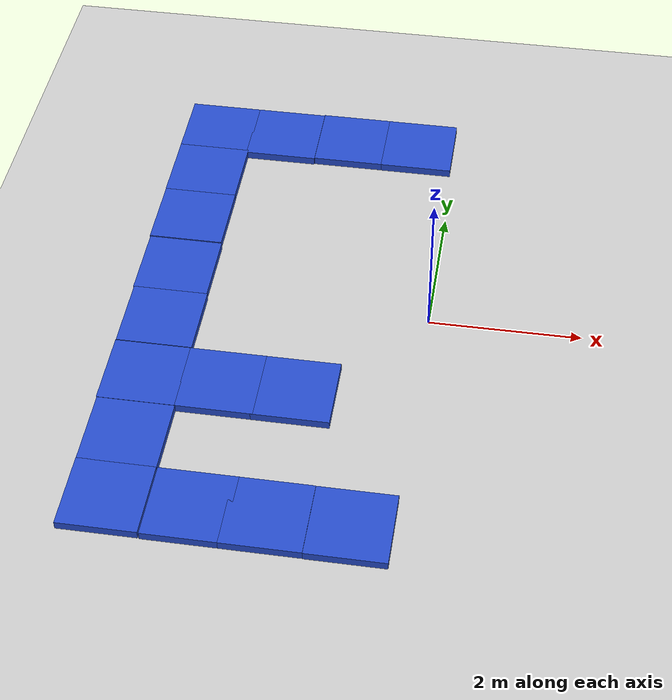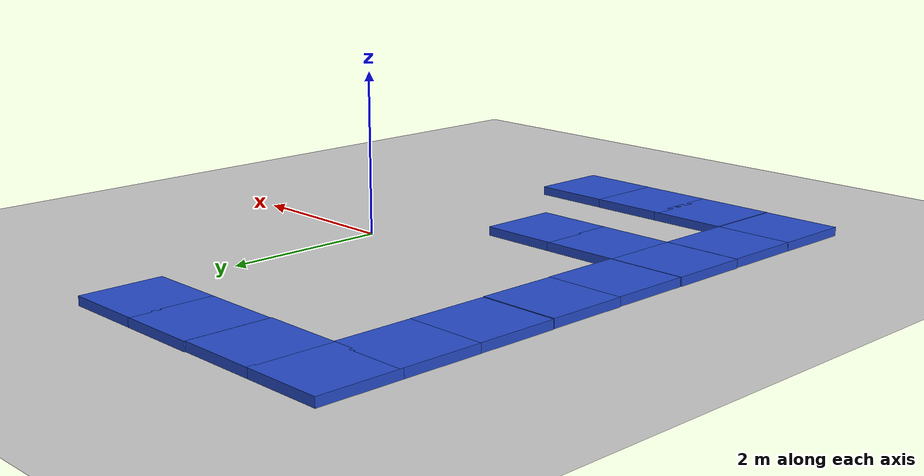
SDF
<sdf version="1.6">
 <world name="default">
  <model name="ground_plane">
   <static>1</static>
   <link name="link">
    <collision name="collision">
     <geometry><plane><normal>0 0 1</normal><size>100 100</size></plane></geometry>
     <surface><friction><ode><mu>100</mu><mu2>50</mu2></ode></friction></surface>
    </collision>
    <visual name="visual">
     <cast_shadows>0</cast_shadows>
     <geometry><plane><normal>0 0 1</normal><size>100 100</size></plane></geometry>
     <material>
      <script><uri>file://media/materials/scripts/gazebo.material</uri><name>Gazebo/Grey</name></script>
     </material>
    </visual>
   </link>
  </model>
  <model name="bloque_clone_5">
   <link name="unit_box::link">
    <inertial>
     <mass>0.765734</mass>
     <inertia>
      <ixx>0.0668092</ixx>
      <ixy>0</ixy>
      <ixz>0</ixz>
      <iyy>0.0668092</iyy>
      <iyz>0</iyz>
      <izz>0.127622</izz>
     </inertia>
    </inertial>
    <visual name="visual">
     <geometry><box><size>1 1 0.2</size></box></geometry>
     <material>
      <script><name>Gazebo/Blue</name><uri>file://media/materials/scripts/gazebo.material</uri></script>
      <shader type="pixel"><normal_map>__default__</normal_map></shader>
      <ambient>0.1 0.1 0.3 1</ambient>
      <diffuse>0.1 0.1 0.7 1</diffuse>
      <specular>0.01 0.01 0.01 1</specular>
      <emissive>0 0 0 1</emissive>
      <lighting>1</lighting>
     </material>
    </visual>
    <collision name="collision">
     <geometry><box><size>1 1 0.2</size></box></geometry>
     <surface>
      <friction>
       <ode><mu>1</mu><mu2>1</mu2><fdir1>0 0 0</fdir1><slip1>0</slip1><slip2>0</slip2></ode>
       <torsional>
        <coefficient>1</coefficient>
        <patch_radius>0</patch_radius>
        <surface_radius>0</surface_radius>
        <use_patch_radius>1</use_patch_radius>
        <ode><slip>0</slip></ode>
       </torsional>
      </friction>
      <bounce><restitution_coefficient>0</restitution_coefficient><threshold>1e+06</threshold></bounce>
      <contact>
       <collide_without_contact>0</collide_without_contact>
       <collide_without_contact_bitmask>1</collide_without_contact_bitmask>
       <collide_bitmask>1</collide_bitmask>
       <ode>
        <soft_cfm>0</soft_cfm>
        <soft_erp>0.2</soft_erp>
        <kp>1e+13</kp>
        <kd>1</kd>
        <max_vel>0.01</max_vel>
        <min_depth>0</min_depth>
       </ode>
       <bullet>
        <split_impulse>1</split_impulse>
        <split_impulse_penetration_threshold>-0.01</split_impulse_penetration_threshold>
        <soft_cfm>0</soft_cfm>
        <soft_erp>0.2</soft_erp>
        <kp>1e+13</kp>
        <kd>1</kd>
       </bullet>
      </contact>
     </surface>
    </collision>
   </link>
   <static>1</static>
   <pose>-0.517215 -3.51963 0 0 -0 0</pose>
  </model>
  <model name="bloque_clone_6">
   <link name="unit_box::link">
    <inertial>
     <mass>0.765734</mass>
     <inertia>
      <ixx>0.0668092</ixx>
      <ixy>0</ixy>
      <ixz>0</ixz>
      <iyy>0.0668092</iyy>
      <iyz>0</iyz>
      <izz>0.127622</izz>
     </inertia>
    </inertial>
    <visual name="visual">
     <geometry><box><size>1 1 0.2</size></box></geometry>
     <material>
      <script><name>Gazebo/Blue</name><uri>file://media/materials/scripts/gazebo.material</uri></script>
      <shader type="pixel"><normal_map>__default__</normal_map></shader>
      <ambient>0.1 0.1 0.3 1</ambient>
      <diffuse>0.1 0.1 0.7 1</diffuse>
      <specular>0.01 0.01 0.01 1</specular>
      <emissive>0 0 0 1</emissive>
      <lighting>1</lighting>
     </material>
    </visual>
    <collision name="collision">
     <geometry><box><size>1 1 0.2</size></box></geometry>
     <surface>
      <friction>
       <ode><mu>1</mu><mu2>1</mu2><fdir1>0 0 0</fdir1><slip1>0</slip1><slip2>0</slip2></ode>
       <torsional>
        <coefficient>1</coefficient>
        <patch_radius>0</patch_radius>
        <surface_radius>0</surface_radius>
        <use_patch_radius>1</use_patch_radius>
        <ode><slip>0</slip></ode>
       </torsional>
      </friction>
      <bounce><restitution_coefficient>0</restitution_coefficient><threshold>1e+06</threshold></bounce>
      <contact>
       <collide_without_contact>0</collide_without_contact>
       <collide_without_contact_bitmask>1</collide_without_contact_bitmask>
       <collide_bitmask>1</collide_bitmask>
       <ode>
        <soft_cfm>0</soft_cfm>
        <soft_erp>0.2</soft_erp>
        <kp>1e+13</kp>
        <kd>1</kd>
        <max_vel>0.01</max_vel>
        <min_depth>0</min_depth>
       </ode>
       <bullet>
        <split_impulse>1</split_impulse>
        <split_impulse_penetration_threshold>-0.01</split_impulse_penetration_threshold>
        <soft_cfm>0</soft_cfm>
        <soft_erp>0.2</soft_erp>
        <kp>1e+13</kp>
        <kd>1</kd>
       </bullet>
      </contact>
     </surface>
    </collision>
   </link>
   <static>1</static>
   <pose>-3.4718 -0.50062 0 0 -0 0</pose>
  </model>
  <model name="bloque_clone_7">
   <link name="unit_box::link">
    <inertial>
     <mass>0.765734</mass>
     <inertia>
      <ixx>0.0668092</ixx>
      <ixy>0</ixy>
      <ixz>0</ixz>
      <iyy>0.0668092</iyy>
      <iyz>0</iyz>
      <izz>0.127622</izz>
     </inertia>
    </inertial>
    <visual name="visual">
     <geometry><box><size>1 1 0.2</size></box></geometry>
     <material>
      <script><name>Gazebo/Blue</name><uri>file://media/materials/scripts/gazebo.material</uri></script>
      <shader type="pixel"><normal_map>__default__</normal_map></shader>
      <ambient>0.1 0.1 0.3 1</ambient>
      <diffuse>0.1 0.1 0.7 1</diffuse>
      <specular>0.01 0.01 0.01 1</specular>
      <emissive>0 0 0 1</emissive>
      <lighting>1</lighting>
     </material>
    </visual>
    <collision name="collision">
     <geometry><box><size>1 1 0.2</size></box></geometry>
     <surface>
      <friction>
       <ode><mu>1</mu><mu2>1</mu2><fdir1>0 0 0</fdir1><slip1>0</slip1><slip2>0</slip2></ode>
       <torsional>
        <coefficient>1</coefficient>
        <patch_radius>0</patch_radius>
        <surface_radius>0</surface_radius>
        <use_patch_radius>1</use_patch_radius>
        <ode><slip>0</slip></ode>
       </torsional>
      </friction>
      <bounce><restitution_coefficient>0</restitution_coefficient><threshold>1e+06</threshold></bounce>
      <contact>
       <collide_without_contact>0</collide_without_contact>
       <collide_without_contact_bitmask>1</collide_without_contact_bitmask>
       <collide_bitmask>1</collide_bitmask>
       <ode>
        <soft_cfm>0</soft_cfm>
        <soft_erp>0.2</soft_erp>
        <kp>1e+13</kp>
        <kd>1</kd>
        <max_vel>0.01</max_vel>
        <min_depth>0</min_depth>
       </ode>
       <bullet>
        <split_impulse>1</split_impulse>
        <split_impulse_penetration_threshold>-0.01</split_impulse_penetration_threshold>
        <soft_cfm>0</soft_cfm>
        <soft_erp>0.2</soft_erp>
        <kp>1e+13</kp>
        <kd>1</kd>
       </bullet>
      </contact>
     </surface>
    </collision>
   </link>
   <static>1</static>
   <pose>-3.46848 -3.5081 0 0 -0 0</pose>
  </model>
  <model name="bloque_clone_8">
   <link name="unit_box::link">
    <inertial>
     <mass>0.765734</mass>
     <inertia>
      <ixx>0.0668092</ixx>
      <ixy>0</ixy>
      <ixz>0</ixz>
      <iyy>0.0668092</iyy>
      <iyz>0</iyz>
      <izz>0.127622</izz>
     </inertia>
    </inertial>
    <visual name="visual">
     <geometry><box><size>1 1 0.2</size></box></geometry>
     <material>
      <script><name>Gazebo/Blue</name><uri>file://media/materials/scripts/gazebo.material</uri></script>
      <shader type="pixel"><normal_map>__default__</normal_map></shader>
      <ambient>0.1 0.1 0.3 1</ambient>
      <diffuse>0.1 0.1 0.7 1</diffuse>
      <specular>0.01 0.01 0.01 1</specular>
      <emissive>0 0 0 1</emissive>
      <lighting>1</lighting>
     </material>
    </visual>
    <collision name="collision">
     <geometry><box><size>1 1 0.2</size></box></geometry>
     <surface>
      <friction>
       <ode><mu>1</mu><mu2>1</mu2><fdir1>0 0 0</fdir1><slip1>0</slip1><slip2>0</slip2></ode>
       <torsional>
        <coefficient>1</coefficient>
        <patch_radius>0</patch_radius>
        <surface_radius>0</surface_radius>
        <use_patch_radius>1</use_patch_radius>
        <ode><slip>0</slip></ode>
       </torsional>
      </friction>
      <bounce><restitution_coefficient>0</restitution_coefficient><threshold>1e+06</threshold></bounce>
      <contact>
       <collide_without_contact>0</collide_without_contact>
       <collide_without_contact_bitmask>1</collide_without_contact_bitmask>
       <collide_bitmask>1</collide_bitmask>
       <ode>
        <soft_cfm>0</soft_cfm>
        <soft_erp>0.2</soft_erp>
        <kp>1e+13</kp>
        <kd>1</kd>
        <max_vel>0.01</max_vel>
        <min_depth>0</min_depth>
       </ode>
       <bullet>
        <split_impulse>1</split_impulse>
        <split_impulse_penetration_threshold>-0.01</split_impulse_penetration_threshold>
        <soft_cfm>0</soft_cfm>
        <soft_erp>0.2</soft_erp>
        <kp>1e+13</kp>
        <kd>1</kd>
       </bullet>
      </contact>
     </surface>
    </collision>
   </link>
   <static>1</static>
   <pose>-1.51898 -3.51565 0 0 -0 0</pose>
  </model>
  <model name="bloque_clone_9">
   <link name="unit_box::link">
    <inertial>
     <mass>0.765734</mass>
     <inertia>
      <ixx>0.0668092</ixx>
      <ixy>0</ixy>
      <ixz>0</ixz>
      <iyy>0.0668092</iyy>
      <iyz>0</iyz>
      <izz>0.127622</izz>
     </inertia>
    </inertial>
    <visual name="visual">
     <geometry><box><size>1 1 0.2</size></box></geometry>
     <material>
      <script><name>Gazebo/Blue</name><uri>file://media/materials/scripts/gazebo.material</uri></script>
      <shader type="pixel"><normal_map>__default__</normal_map></shader>
      <ambient>0.1 0.1 0.3 1</ambient>
      <diffuse>0.1 0.1 0.7 1</diffuse>
      <specular>0.01 0.01 0.01 1</specular>
      <emissive>0 0 0 1</emissive>
      <lighting>1</lighting>
     </material>
    </visual>
    <collision name="collision">
     <geometry><box><size>1 1 0.2</size></box></geometry>
     <surface>
      <friction>
       <ode><mu>1</mu><mu2>1</mu2><fdir1>0 0 0</fdir1><slip1>0</slip1><slip2>0</slip2></ode>
       <torsional>
        <coefficient>1</coefficient>
        <patch_radius>0</patch_radius>
        <surface_radius>0</surface_radius>
        <use_patch_radius>1</use_patch_radius>
        <ode><slip>0</slip></ode>
       </torsional>
      </friction>
      <bounce><restitution_coefficient>0</restitution_coefficient><threshold>1e+06</threshold></bounce>
      <contact>
       <collide_without_contact>0</collide_without_contact>
       <collide_without_contact_bitmask>1</collide_without_contact_bitmask>
       <collide_bitmask>1</collide_bitmask>
       <ode>
        <soft_cfm>0</soft_cfm>
        <soft_erp>0.2</soft_erp>
        <kp>1e+13</kp>
        <kd>1</kd>
        <max_vel>0.01</max_vel>
        <min_depth>0</min_depth>
       </ode>
       <bullet>
        <split_impulse>1</split_impulse>
        <split_impulse_penetration_threshold>-0.01</split_impulse_penetration_threshold>
        <soft_cfm>0</soft_cfm>
        <soft_erp>0.2</soft_erp>
        <kp>1e+13</kp>
        <kd>1</kd>
       </bullet>
      </contact>
     </surface>
    </collision>
   </link>
   <static>1</static>
   <pose>-2.45176 -3.51518 0 0 -0 0</pose>
  </model>
  <model name="bloque_clone_10">
   <link name="unit_box::link">
    <inertial>
     <mass>0.765734</mass>
     <inertia>
      <ixx>0.0668092</ixx>
      <ixy>0</ixy>
      <ixz>0</ixz>
      <iyy>0.0668092</iyy>
      <iyz>0</iyz>
      <izz>0.127622</izz>
     </inertia>
    </inertial>
    <visual name="visual">
     <geometry><box><size>1 1 0.2</size></box></geometry>
     <material>
      <script><name>Gazebo/Blue</name><uri>file://media/materials/scripts/gazebo.material</uri></script>
      <shader type="pixel"><normal_map>__default__</normal_map></shader>
      <ambient>0.1 0.1 0.3 1</ambient>
      <diffuse>0.1 0.1 0.7 1</diffuse>
      <specular>0.01 0.01 0.01 1</specular>
      <emissive>0 0 0 1</emissive>
      <lighting>1</lighting>
     </material>
    </visual>
    <collision name="collision">
     <geometry><box><size>1 1 0.2</size></box></geometry>
     <surface>
      <friction>
       <ode><mu>1</mu><mu2>1</mu2><fdir1>0 0 0</fdir1><slip1>0</slip1><slip2>0</slip2></ode>
       <torsional>
        <coefficient>1</coefficient>
        <patch_radius>0</patch_radius>
        <surface_radius>0</surface_radius>
        <use_patch_radius>1</use_patch_radius>
        <ode><slip>0</slip></ode>
       </torsional>
      </friction>
      <bounce><restitution_coefficient>0</restitution_coefficient><threshold>1e+06</threshold></bounce>
      <contact>
       <collide_without_contact>0</collide_without_contact>
       <collide_without_contact_bitmask>1</collide_without_contact_bitmask>
       <collide_bitmask>1</collide_bitmask>
       <ode>
        <soft_cfm>0</soft_cfm>
        <soft_erp>0.2</soft_erp>
        <kp>1e+13</kp>
        <kd>1</kd>
        <max_vel>0.01</max_vel>
        <min_depth>0</min_depth>
       </ode>
       <bullet>
        <split_impulse>1</split_impulse>
        <split_impulse_penetration_threshold>-0.01</split_impulse_penetration_threshold>
        <soft_cfm>0</soft_cfm>
        <soft_erp>0.2</soft_erp>
        <kp>1e+13</kp>
        <kd>1</kd>
       </bullet>
      </contact>
     </surface>
    </collision>
   </link>
   <static>1</static>
   <pose>-3.46553 -2.51171 0 0 -0 0</pose>
  </model>
  <model name="bloque_clone_11">
   <link name="unit_box::link">
    <inertial>
     <mass>0.765734</mass>
     <inertia>
      <ixx>0.0668092</ixx>
      <ixy>0</ixy>
      <ixz>0</ixz>
      <iyy>0.0668092</iyy>
      <iyz>0</iyz>
      <izz>0.127622</izz>
     </inertia>
    </inertial>
    <visual name="visual">
     <geometry><box><size>1 1 0.2</size></box></geometry>
     <material>
      <script><name>Gazebo/Blue</name><uri>file://media/materials/scripts/gazebo.material</uri></script>
      <shader type="pixel"><normal_map>__default__</normal_map></shader>
      <ambient>0.1 0.1 0.3 1</ambient>
      <diffuse>0.1 0.1 0.7 1</diffuse>
      <specular>0.01 0.01 0.01 1</specular>
      <emissive>0 0 0 1</emissive>
      <lighting>1</lighting>
     </material>
    </visual>
    <collision name="collision">
     <geometry><box><size>1 1 0.2</size></box></geometry>
     <surface>
      <friction>
       <ode><mu>1</mu><mu2>1</mu2><fdir1>0 0 0</fdir1><slip1>0</slip1><slip2>0</slip2></ode>
       <torsional>
        <coefficient>1</coefficient>
        <patch_radius>0</patch_radius>
        <surface_radius>0</surface_radius>
        <use_patch_radius>1</use_patch_radius>
        <ode><slip>0</slip></ode>
       </torsional>
      </friction>
      <bounce><restitution_coefficient>0</restitution_coefficient><threshold>1e+06</threshold></bounce>
      <contact>
       <collide_without_contact>0</collide_without_contact>
       <collide_without_contact_bitmask>1</collide_without_contact_bitmask>
       <collide_bitmask>1</collide_bitmask>
       <ode>
        <soft_cfm>0</soft_cfm>
        <soft_erp>0.2</soft_erp>
        <kp>1e+13</kp>
        <kd>1</kd>
        <max_vel>0.01</max_vel>
        <min_depth>0</min_depth>
       </ode>
       <bullet>
        <split_impulse>1</split_impulse>
        <split_impulse_penetration_threshold>-0.01</split_impulse_penetration_threshold>
        <soft_cfm>0</soft_cfm>
        <soft_erp>0.2</soft_erp>
        <kp>1e+13</kp>
        <kd>1</kd>
       </bullet>
      </contact>
     </surface>
    </collision>
   </link>
   <static>1</static>
   <pose>-3.47539 -1.50897 0 0 -0 0</pose>
  </model>
  <model name="bloque_clone_12">
   <link name="unit_box::link">
    <inertial>
     <mass>0.765734</mass>
     <inertia>
      <ixx>0.0668092</ixx>
      <ixy>0</ixy>
      <ixz>0</ixz>
      <iyy>0.0668092</iyy>
      <iyz>0</iyz>
      <izz>0.127622</izz>
     </inertia>
    </inertial>
    <visual name="visual">
     <geometry><box><size>1 1 0.2</size></box></geometry>
     <material>
      <script><name>Gazebo/Blue</name><uri>file://media/materials/scripts/gazebo.material</uri></script>
      <shader type="pixel"><normal_map>__default__</normal_map></shader>
      <ambient>0.1 0.1 0.3 1</ambient>
      <diffuse>0.1 0.1 0.7 1</diffuse>
      <specular>0.01 0.01 0.01 1</specular>
      <emissive>0 0 0 1</emissive>
      <lighting>1</lighting>
     </material>
    </visual>
    <collision name="collision">
     <geometry><box><size>1 1 0.2</size></box></geometry>
     <surface>
      <friction>
       <ode><mu>1</mu><mu2>1</mu2><fdir1>0 0 0</fdir1><slip1>0</slip1><slip2>0</slip2></ode>
       <torsional>
        <coefficient>1</coefficient>
        <patch_radius>0</patch_radius>
        <surface_radius>0</surface_radius>
        <use_patch_radius>1</use_patch_radius>
        <ode><slip>0</slip></ode>
       </torsional>
      </friction>
      <bounce><restitution_coefficient>0</restitution_coefficient><threshold>1e+06</threshold></bounce>
      <contact>
       <collide_without_contact>0</collide_without_contact>
       <collide_without_contact_bitmask>1</collide_without_contact_bitmask>
       <collide_bitmask>1</collide_bitmask>
       <ode>
        <soft_cfm>0</soft_cfm>
        <soft_erp>0.2</soft_erp>
        <kp>1e+13</kp>
        <kd>1</kd>
        <max_vel>0.01</max_vel>
        <min_depth>0</min_depth>
       </ode>
       <bullet>
        <split_impulse>1</split_impulse>
        <split_impulse_penetration_threshold>-0.01</split_impulse_penetration_threshold>
        <soft_cfm>0</soft_cfm>
        <soft_erp>0.2</soft_erp>
        <kp>1e+13</kp>
        <kd>1</kd>
       </bullet>
      </contact>
     </surface>
    </collision>
   </link>
   <static>1</static>
   <pose>-3.48145 0.49514 0 0 -0 0</pose>
  </model>
  <model name="bloque_clone_13">
   <link name="unit_box::link">
    <inertial>
     <mass>0.765734</mass>
     <inertia>
      <ixx>0.0668092</ixx>
      <ixy>0</ixy>
      <ixz>0</ixz>
      <iyy>0.0668092</iyy>
      <iyz>0</iyz>
      <izz>0.127622</izz>
     </inertia>
    </inertial>
    <visual name="visual">
     <geometry><box><size>1 1 0.2</size></box></geometry>
     <material>
      <script><name>Gazebo/Blue</name><uri>file://media/materials/scripts/gazebo.material</uri></script>
      <shader type="pixel"><normal_map>__default__</normal_map></shader>
      <ambient>0.1 0.1 0.3 1</ambient>
      <diffuse>0.1 0.1 0.7 1</diffuse>
      <specular>0.01 0.01 0.01 1</specular>
      <emissive>0 0 0 1</emissive>
      <lighting>1</lighting>
     </material>
    </visual>
    <collision name="collision">
     <geometry><box><size>1 1 0.2</size></box></geometry>
     <surface>
      <friction>
       <ode><mu>1</mu><mu2>1</mu2><fdir1>0 0 0</fdir1><slip1>0</slip1><slip2>0</slip2></ode>
       <torsional>
        <coefficient>1</coefficient>
        <patch_radius>0</patch_radius>
        <surface_radius>0</surface_radius>
        <use_patch_radius>1</use_patch_radius>
        <ode><slip>0</slip></ode>
       </torsional>
      </friction>
      <bounce><restitution_coefficient>0</restitution_coefficient><threshold>1e+06</threshold></bounce>
      <contact>
       <collide_without_contact>0</collide_without_contact>
       <collide_without_contact_bitmask>1</collide_without_contact_bitmask>
       <collide_bitmask>1</collide_bitmask>
       <ode>
        <soft_cfm>0</soft_cfm>
        <soft_erp>0.2</soft_erp>
        <kp>1e+13</kp>
        <kd>1</kd>
        <max_vel>0.01</max_vel>
        <min_depth>0</min_depth>
       </ode>
       <bullet>
        <split_impulse>1</split_impulse>
        <split_impulse_penetration_threshold>-0.01</split_impulse_penetration_threshold>
        <soft_cfm>0</soft_cfm>
        <soft_erp>0.2</soft_erp>
        <kp>1e+13</kp>
        <kd>1</kd>
       </bullet>
      </contact>
     </surface>
    </collision>
   </link>
   <static>1</static>
   <pose>-3.49288 1.51143 0 0 -0 0</pose>
  </model>
  <model name="bloque_clone_15">
   <link name="unit_box::link">
    <inertial>
     <mass>0.765734</mass>
     <inertia>
      <ixx>0.0668092</ixx>
      <ixy>0</ixy>
      <ixz>0</ixz>
      <iyy>0.0668092</iyy>
      <iyz>0</iyz>
      <izz>0.127622</izz>
     </inertia>
    </inertial>
    <visual name="visual">
     <geometry><box><size>1 1 0.2</size></box></geometry>
     <material>
      <script><name>Gazebo/Blue</name><uri>file://media/materials/scripts/gazebo.material</uri></script>
      <shader type="pixel"><normal_map>__default__</normal_map></shader>
      <ambient>0.1 0.1 0.3 1</ambient>
      <diffuse>0.1 0.1 0.7 1</diffuse>
      <specular>0.01 0.01 0.01 1</specular>
      <emissive>0 0 0 1</emissive>
      <lighting>1</lighting>
     </material>
    </visual>
    <collision name="collision">
     <geometry><box><size>1 1 0.2</size></box></geometry>
     <surface>
      <friction>
       <ode><mu>1</mu><mu2>1</mu2><fdir1>0 0 0</fdir1><slip1>0</slip1><slip2>0</slip2></ode>
       <torsional>
        <coefficient>1</coefficient>
        <patch_radius>0</patch_radius>
        <surface_radius>0</surface_radius>
        <use_patch_radius>1</use_patch_radius>
        <ode><slip>0</slip></ode>
       </torsional>
      </friction>
      <bounce><restitution_coefficient>0</restitution_coefficient><threshold>1e+06</threshold></bounce>
      <contact>
       <collide_without_contact>0</collide_without_contact>
       <collide_without_contact_bitmask>1</collide_without_contact_bitmask>
       <collide_bitmask>1</collide_bitmask>
       <ode>
        <soft_cfm>0</soft_cfm>
        <soft_erp>0.2</soft_erp>
        <kp>1e+13</kp>
        <kd>1</kd>
        <max_vel>0.01</max_vel>
        <min_depth>0</min_depth>
       </ode>
       <bullet>
        <split_impulse>1</split_impulse>
        <split_impulse_penetration_threshold>-0.01</split_impulse_penetration_threshold>
        <soft_cfm>0</soft_cfm>
        <soft_erp>0.2</soft_erp>
        <kp>1e+13</kp>
        <kd>1</kd>
       </bullet>
      </contact>
     </surface>
    </collision>
   </link>
   <static>1</static>
   <pose>-3.4961 2.51134 0 0 -0 0</pose>
  </model>
  <model name="bloque_clone_16">
   <link name="unit_box::link">
    <inertial>
     <mass>0.765734</mass>
     <inertia>
      <ixx>0.0668092</ixx>
      <ixy>0</ixy>
      <ixz>0</ixz>
      <iyy>0.0668092</iyy>
      <iyz>0</iyz>
      <izz>0.127622</izz>
     </inertia>
    </inertial>
    <visual name="visual">
     <geometry><box><size>1 1 0.2</size></box></geometry>
     <material>
      <script><name>Gazebo/Blue</name><uri>file://media/materials/scripts/gazebo.material</uri></script>
      <shader type="pixel"><normal_map>__default__</normal_map></shader>
      <ambient>0.1 0.1 0.3 1</ambient>
      <diffuse>0.1 0.1 0.7 1</diffuse>
      <specular>0.01 0.01 0.01 1</specular>
      <emissive>0 0 0 1</emissive>
      <lighting>1</lighting>
     </material>
    </visual>
    <collision name="collision">
     <geometry><box><size>1 1 0.2</size></box></geometry>
     <surface>
      <friction>
       <ode><mu>1</mu><mu2>1</mu2><fdir1>0 0 0</fdir1><slip1>0</slip1><slip2>0</slip2></ode>
       <torsional>
        <coefficient>1</coefficient>
        <patch_radius>0</patch_radius>
        <surface_radius>0</surface_radius>
        <use_patch_radius>1</use_patch_radius>
        <ode><slip>0</slip></ode>
       </torsional>
      </friction>
      <bounce><restitution_coefficient>0</restitution_coefficient><threshold>1e+06</threshold></bounce>
      <contact>
       <collide_without_contact>0</collide_without_contact>
       <collide_without_contact_bitmask>1</collide_without_contact_bitmask>
       <collide_bitmask>1</collide_bitmask>
       <ode>
        <soft_cfm>0</soft_cfm>
        <soft_erp>0.2</soft_erp>
        <kp>1e+13</kp>
        <kd>1</kd>
        <max_vel>0.01</max_vel>
        <min_depth>0</min_depth>
       </ode>
       <bullet>
        <split_impulse>1</split_impulse>
        <split_impulse_penetration_threshold>-0.01</split_impulse_penetration_threshold>
        <soft_cfm>0</soft_cfm>
        <soft_erp>0.2</soft_erp>
        <kp>1e+13</kp>
        <kd>1</kd>
       </bullet>
      </contact>
     </surface>
    </collision>
   </link>
   <static>1</static>
   <pose>-3.49743 3.46777 0 0 -0 0</pose>
  </model>
  <model name="bloque_clone_17">
   <link name="unit_box::link">
    <inertial>
     <mass>0.765734</mass>
     <inertia>
      <ixx>0.0668092</ixx>
      <ixy>0</ixy>
      <ixz>0</ixz>
      <iyy>0.0668092</iyy>
      <iyz>0</iyz>
      <izz>0.127622</izz>
     </inertia>
    </inertial>
    <visual name="visual">
     <geometry><box><size>1 1 0.2</size></box></geometry>
     <material>
      <script><name>Gazebo/Blue</name><uri>file://media/materials/scripts/gazebo.material</uri></script>
      <shader type="pixel"><normal_map>__default__</normal_map></shader>
      <ambient>0.1 0.1 0.3 1</ambient>
      <diffuse>0.1 0.1 0.7 1</diffuse>
      <specular>0.01 0.01 0.01 1</specular>
      <emissive>0 0 0 1</emissive>
      <lighting>1</lighting>
     </material>
    </visual>
    <collision name="collision">
     <geometry><box><size>1 1 0.2</size></box></geometry>
     <surface>
      <friction>
       <ode><mu>1</mu><mu2>1</mu2><fdir1>0 0 0</fdir1><slip1>0</slip1><slip2>0</slip2></ode>
       <torsional>
        <coefficient>1</coefficient>
        <patch_radius>0</patch_radius>
        <surface_radius>0</surface_radius>
        <use_patch_radius>1</use_patch_radius>
        <ode><slip>0</slip></ode>
       </torsional>
      </friction>
      <bounce><restitution_coefficient>0</restitution_coefficient><threshold>1e+06</threshold></bounce>
      <contact>
       <collide_without_contact>0</collide_without_contact>
       <collide_without_contact_bitmask>1</collide_without_contact_bitmask>
       <collide_bitmask>1</collide_bitmask>
       <ode>
        <soft_cfm>0</soft_cfm>
        <soft_erp>0.2</soft_erp>
        <kp>1e+13</kp>
        <kd>1</kd>
        <max_vel>0.01</max_vel>
        <min_depth>0</min_depth>
       </ode>
       <bullet>
        <split_impulse>1</split_impulse>
        <split_impulse_penetration_threshold>-0.01</split_impulse_penetration_threshold>
        <soft_cfm>0</soft_cfm>
        <soft_erp>0.2</soft_erp>
        <kp>1e+13</kp>
        <kd>1</kd>
       </bullet>
      </contact>
     </surface>
    </collision>
   </link>
   <static>1</static>
   <pose>-2.51601 3.46792 0 0 -0 0</pose>
  </model>
  <model name="bloque_clone_18">
   <link name="unit_box::link">
    <inertial>
     <mass>0.765734</mass>
     <inertia>
      <ixx>0.0668092</ixx>
      <ixy>0</ixy>
      <ixz>0</ixz>
      <iyy>0.0668092</iyy>
      <iyz>0</iyz>
      <izz>0.127622</izz>
     </inertia>
    </inertial>
    <visual name="visual">
     <geometry><box><size>1 1 0.2</size></box></geometry>
     <material>
      <script><name>Gazebo/Blue</name><uri>file://media/materials/scripts/gazebo.material</uri></script>
      <shader type="pixel"><normal_map>__default__</normal_map></shader>
      <ambient>0.1 0.1 0.3 1</ambient>
      <diffuse>0.1 0.1 0.7 1</diffuse>
      <specular>0.01 0.01 0.01 1</specular>
      <emissive>0 0 0 1</emissive>
      <lighting>1</lighting>
     </material>
    </visual>
    <collision name="collision">
     <geometry><box><size>1 1 0.2</size></box></geometry>
     <surface>
      <friction>
       <ode><mu>1</mu><mu2>1</mu2><fdir1>0 0 0</fdir1><slip1>0</slip1><slip2>0</slip2></ode>
       <torsional>
        <coefficient>1</coefficient>
        <patch_radius>0</patch_radius>
        <surface_radius>0</surface_radius>
        <use_patch_radius>1</use_patch_radius>
        <ode><slip>0</slip></ode>
       </torsional>
      </friction>
      <bounce><restitution_coefficient>0</restitution_coefficient><threshold>1e+06</threshold></bounce>
      <contact>
       <collide_without_contact>0</collide_without_contact>
       <collide_without_contact_bitmask>1</collide_without_contact_bitmask>
       <collide_bitmask>1</collide_bitmask>
       <ode>
        <soft_cfm>0</soft_cfm>
        <soft_erp>0.2</soft_erp>
        <kp>1e+13</kp>
        <kd>1</kd>
        <max_vel>0.01</max_vel>
        <min_depth>0</min_depth>
       </ode>
       <bullet>
        <split_impulse>1</split_impulse>
        <split_impulse_penetration_threshold>-0.01</split_impulse_penetration_threshold>
        <soft_cfm>0</soft_cfm>
        <soft_erp>0.2</soft_erp>
        <kp>1e+13</kp>
        <kd>1</kd>
       </bullet>
      </contact>
     </surface>
    </collision>
   </link>
   <static>1</static>
   <pose>-1.51393 3.48041 0 0 -0 0</pose>
  </model>
  <model name="bloque_clone_19">
   <link name="unit_box::link">
    <inertial>
     <mass>0.765734</mass>
     <inertia>
      <ixx>0.0668092</ixx>
      <ixy>0</ixy>
      <ixz>0</ixz>
      <iyy>0.0668092</iyy>
      <iyz>0</iyz>
      <izz>0.127622</izz>
     </inertia>
    </inertial>
    <visual name="visual">
     <geometry><box><size>1 1 0.2</size></box></geometry>
     <material>
      <script><name>Gazebo/Blue</name><uri>file://media/materials/scripts/gazebo.material</uri></script>
      <shader type="pixel"><normal_map>__default__</normal_map></shader>
      <ambient>0.1 0.1 0.3 1</ambient>
      <diffuse>0.1 0.1 0.7 1</diffuse>
      <specular>0.01 0.01 0.01 1</specular>
      <emissive>0 0 0 1</emissive>
      <lighting>1</lighting>
     </material>
    </visual>
    <collision name="collision">
     <geometry><box><size>1 1 0.2</size></box></geometry>
     <surface>
      <friction>
       <ode><mu>1</mu><mu2>1</mu2><fdir1>0 0 0</fdir1><slip1>0</slip1><slip2>0</slip2></ode>
       <torsional>
        <coefficient>1</coefficient>
        <patch_radius>0</patch_radius>
        <surface_radius>0</surface_radius>
        <use_patch_radius>1</use_patch_radius>
        <ode><slip>0</slip></ode>
       </torsional>
      </friction>
      <bounce><restitution_coefficient>0</restitution_coefficient><threshold>1e+06</threshold></bounce>
      <contact>
       <collide_without_contact>0</collide_without_contact>
       <collide_without_contact_bitmask>1</collide_without_contact_bitmask>
       <collide_bitmask>1</collide_bitmask>
       <ode>
        <soft_cfm>0</soft_cfm>
        <soft_erp>0.2</soft_erp>
        <kp>1e+13</kp>
        <kd>1</kd>
        <max_vel>0.01</max_vel>
        <min_depth>0</min_depth>
       </ode>
       <bullet>
        <split_impulse>1</split_impulse>
        <split_impulse_penetration_threshold>-0.01</split_impulse_penetration_threshold>
        <soft_cfm>0</soft_cfm>
        <soft_erp>0.2</soft_erp>
        <kp>1e+13</kp>
        <kd>1</kd>
       </bullet>
      </contact>
     </surface>
    </collision>
   </link>
   <static>1</static>
   <pose>-0.542565 3.4791 0 0 -0 0</pose>
  </model>
  <model name="bloque_clone_22_clone_0">
   <link name="unit_box::link">
    <inertial>
     <mass>0.765734</mass>
     <inertia>
      <ixx>0.0668092</ixx>
      <ixy>0</ixy>
      <ixz>0</ixz>
      <iyy>0.0668092</iyy>
      <iyz>0</iyz>
      <izz>0.127622</izz>
     </inertia>
    </inertial>
    <visual name="visual">
     <geometry><box><size>1 1 0.2</size></box></geometry>
     <material>
      <script><name>Gazebo/Blue</name><uri>file://media/materials/scripts/gazebo.material</uri></script>
      <shader type="pixel"><normal_map>__default__</normal_map></shader>
      <ambient>0.1 0.1 0.3 1</ambient>
      <diffuse>0.1 0.1 0.7 1</diffuse>
      <specular>0.01 0.01 0.01 1</specular>
      <emissive>0 0 0 1</emissive>
      <lighting>1</lighting>
     </material>
    </visual>
    <collision name="collision">
     <geometry><box><size>1 1 0.2</size></box></geometry>
     <surface>
      <friction>
       <ode><mu>1</mu><mu2>1</mu2><fdir1>0 0 0</fdir1><slip1>0</slip1><slip2>0</slip2></ode>
       <torsional>
        <coefficient>1</coefficient>
        <patch_radius>0</patch_radius>
        <surface_radius>0</surface_radius>
        <use_patch_radius>1</use_patch_radius>
        <ode><slip>0</slip></ode>
       </torsional>
      </friction>
      <bounce><restitution_coefficient>0</restitution_coefficient><threshold>1e+06</threshold></bounce>
      <contact>
       <collide_without_contact>0</collide_without_contact>
       <collide_without_contact_bitmask>1</collide_without_contact_bitmask>
       <collide_bitmask>1</collide_bitmask>
       <ode>
        <soft_cfm>0</soft_cfm>
        <soft_erp>0.2</soft_erp>
        <kp>1e+13</kp>
        <kd>1</kd>
        <max_vel>0.01</max_vel>
        <min_depth>0</min_depth>
       </ode>
       <bullet>
        <split_impulse>1</split_impulse>
        <split_impulse_penetration_threshold>-0.01</split_impulse_penetration_threshold>
        <soft_cfm>0</soft_cfm>
        <soft_erp>0.2</soft_erp>
        <kp>1e+13</kp>
        <kd>1</kd>
       </bullet>
      </contact>
     </surface>
    </collision>
   </link>
   <static>1</static>
   <pose>-1.51527 -1.50987 0 0 -0 0</pose>
  </model>
  <model name="bloque_clone_22_clone_1">
   <link name="unit_box::link">
    <inertial>
     <mass>0.765734</mass>
     <inertia>
      <ixx>0.0668092</ixx>
      <ixy>0</ixy>
      <ixz>0</ixz>
      <iyy>0.0668092</iyy>
      <iyz>0</iyz>
      <izz>0.127622</izz>
     </inertia>
    </inertial>
    <visual name="visual">
     <geometry><box><size>1 1 0.2</size></box></geometry>
     <material>
      <script><name>Gazebo/Blue</name><uri>file://media/materials/scripts/gazebo.material</uri></script>
      <shader type="pixel"><normal_map>__default__</normal_map></shader>
      <ambient>0.1 0.1 0.3 1</ambient>
      <diffuse>0.1 0.1 0.7 1</diffuse>
      <specular>0.01 0.01 0.01 1</specular>
      <emissive>0 0 0 1</emissive>
      <lighting>1</lighting>
     </material>
    </visual>
    <collision name="collision">
     <geometry><box><size>1 1 0.2</size></box></geometry>
     <surface>
      <friction>
       <ode><mu>1</mu><mu2>1</mu2><fdir1>0 0 0</fdir1><slip1>0</slip1><slip2>0</slip2></ode>
       <torsional>
        <coefficient>1</coefficient>
        <patch_radius>0</patch_radius>
        <surface_radius>0</surface_radius>
        <use_patch_radius>1</use_patch_radius>
        <ode><slip>0</slip></ode>
       </torsional>
      </friction>
      <bounce><restitution_coefficient>0</restitution_coefficient><threshold>1e+06</threshold></bounce>
      <contact>
       <collide_without_contact>0</collide_without_contact>
       <collide_without_contact_bitmask>1</collide_without_contact_bitmask>
       <collide_bitmask>1</collide_bitmask>
       <ode>
        <soft_cfm>0</soft_cfm>
        <soft_erp>0.2</soft_erp>
        <kp>1e+13</kp>
        <kd>1</kd>
        <max_vel>0.01</max_vel>
        <min_depth>0</min_depth>
       </ode>
       <bullet>
        <split_impulse>1</split_impulse>
        <split_impulse_penetration_threshold>-0.01</split_impulse_penetration_threshold>
        <soft_cfm>0</soft_cfm>
        <soft_erp>0.2</soft_erp>
        <kp>1e+13</kp>
        <kd>1</kd>
       </bullet>
      </contact>
     </surface>
    </collision>
   </link>
   <static>1</static>
   <pose>-2.48333 -1.50913 0 0 -0 0</pose>
  </model>
 </world>
</sdf>
